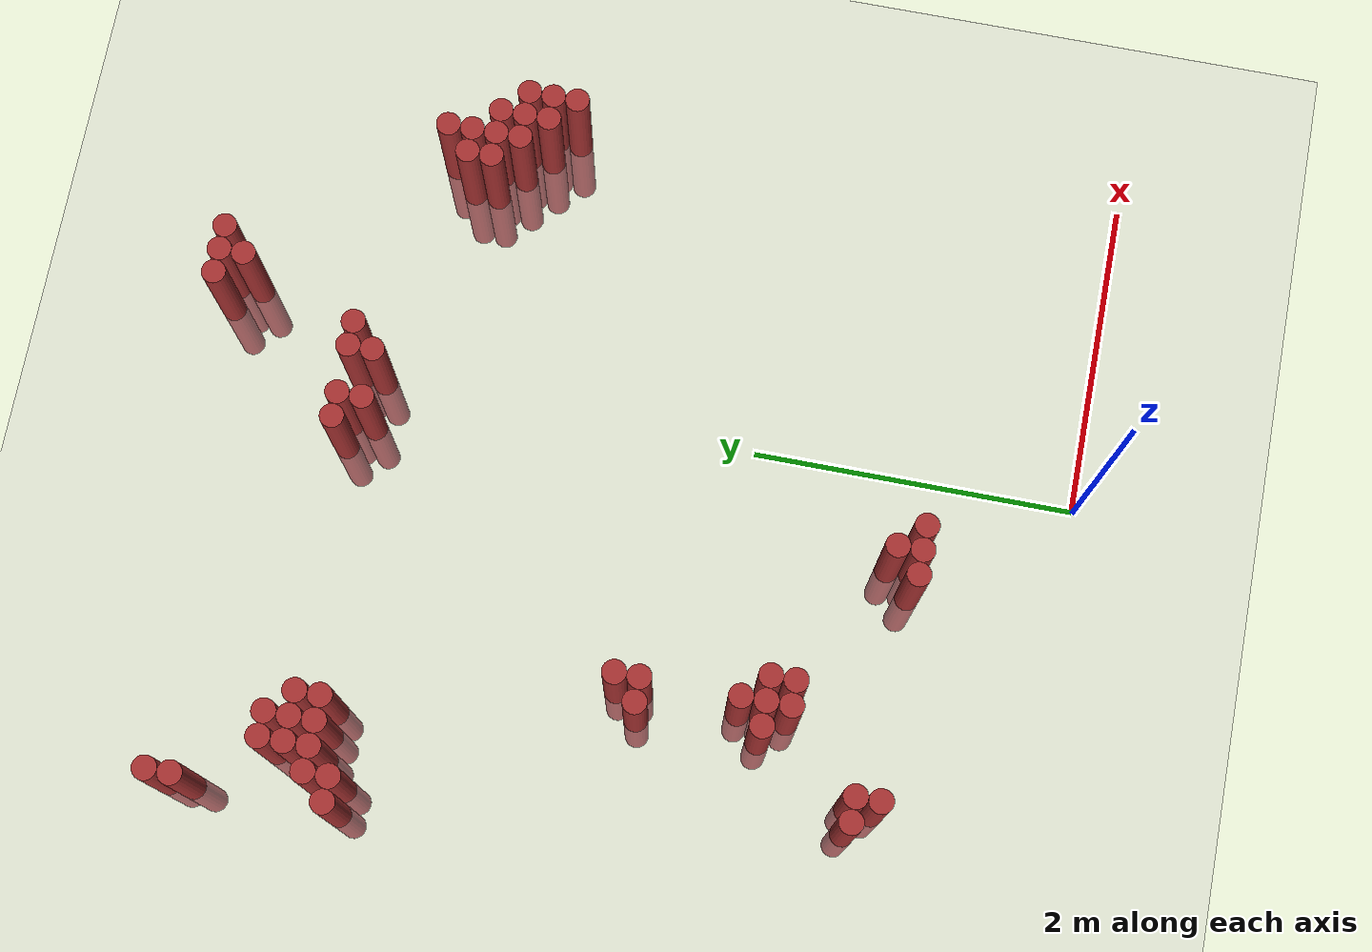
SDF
<sdf version="1.6">
 <world name="default">
  <model name="ground_plane">
   <static>1</static>
   <link name="link">
    <collision name="collision">
     <geometry><plane><normal>0 0 1</normal><size>100 100</size></plane></geometry>
     <surface><friction><ode><mu>100</mu><mu2>50</mu2></ode></friction></surface>
    </collision>
    <visual name="visual">
     <cast_shadows>0</cast_shadows>
     <geometry><plane><normal>0 0 1</normal><size>100 100</size></plane></geometry>
     <material>
      <script><uri>file://media/materials/scripts/gazebo.material</uri><name>Gazebo/Grey</name></script>
     </material>
    </visual>
   </link>
  </model>
  <model name="unit_cylinder_297">
   <static>1</static>
   <pose>-2.675000 4.075000 0.000000 0.000000 0.000000 0.000000</pose>
   <link name="link">
    <inertial>
     <mass>1</mass>
     <inertia><ixx>0.145833</ixx><ixy>0</ixy><ixz>0</ixz><iyy>0.145833</iyy><iyz>0</iyz><izz>0.125</izz></inertia>
    </inertial>
    <collision name="collision">
     <geometry><cylinder><radius>0.075000</radius><length>1.5</length></cylinder></geometry>
    </collision>
    <visual name="visual">
     <geometry><cylinder><radius>0.075000</radius><length>1.5</length></cylinder></geometry>
     <material>
      <ambient>0.648000 0.192000 0.192000 1</ambient>
      <diffuse>0.648000 0.192000 0.192000 1</diffuse>
     </material>
     <material>
      <script><name>Gazebo/Grey</name><uri>file://media/materials/scripts/gazebo.material</uri></script>
     </material>
    </visual>
   </link>
  </model>
  <model name="unit_cylinder_298">
   <static>1</static>
   <pose>-2.675000 4.975000 0.000000 0.000000 0.000000 0.000000</pose>
   <link name="link">
    <inertial>
     <mass>1</mass>
     <inertia><ixx>0.145833</ixx><ixy>0</ixy><ixz>0</ixz><iyy>0.145833</iyy><iyz>0</iyz><izz>0.125</izz></inertia>
    </inertial>
    <collision name="collision">
     <geometry><cylinder><radius>0.075000</radius><length>1.5</length></cylinder></geometry>
    </collision>
    <visual name="visual">
     <geometry><cylinder><radius>0.075000</radius><length>1.5</length></cylinder></geometry>
     <material>
      <ambient>0.648000 0.192000 0.192000 1</ambient>
      <diffuse>0.648000 0.192000 0.192000 1</diffuse>
     </material>
     <material>
      <script><name>Gazebo/Grey</name><uri>file://media/materials/scripts/gazebo.material</uri></script>
     </material>
    </visual>
   </link>
  </model>
  <model name="unit_cylinder_299">
   <static>1</static>
   <pose>-2.675000 5.125000 0.000000 0.000000 0.000000 0.000000</pose>
   <link name="link">
    <inertial>
     <mass>1</mass>
     <inertia><ixx>0.145833</ixx><ixy>0</ixy><ixz>0</ixz><iyy>0.145833</iyy><iyz>0</iyz><izz>0.125</izz></inertia>
    </inertial>
    <collision name="collision">
     <geometry><cylinder><radius>0.075000</radius><length>1.5</length></cylinder></geometry>
    </collision>
    <visual name="visual">
     <geometry><cylinder><radius>0.075000</radius><length>1.5</length></cylinder></geometry>
     <material>
      <ambient>0.648000 0.192000 0.192000 1</ambient>
      <diffuse>0.648000 0.192000 0.192000 1</diffuse>
     </material>
     <material>
      <script><name>Gazebo/Grey</name><uri>file://media/materials/scripts/gazebo.material</uri></script>
     </material>
    </visual>
   </link>
  </model>
  <model name="unit_cylinder_300">
   <static>1</static>
   <pose>-2.525000 4.075000 0.000000 0.000000 0.000000 0.000000</pose>
   <link name="link">
    <inertial>
     <mass>1</mass>
     <inertia><ixx>0.145833</ixx><ixy>0</ixy><ixz>0</ixz><iyy>0.145833</iyy><iyz>0</iyz><izz>0.125</izz></inertia>
    </inertial>
    <collision name="collision">
     <geometry><cylinder><radius>0.075000</radius><length>1.5</length></cylinder></geometry>
    </collision>
    <visual name="visual">
     <geometry><cylinder><radius>0.075000</radius><length>1.5</length></cylinder></geometry>
     <material>
      <ambient>0.648000 0.192000 0.192000 1</ambient>
      <diffuse>0.648000 0.192000 0.192000 1</diffuse>
     </material>
     <material>
      <script><name>Gazebo/Grey</name><uri>file://media/materials/scripts/gazebo.material</uri></script>
     </material>
    </visual>
   </link>
  </model>
  <model name="unit_cylinder_301">
   <static>1</static>
   <pose>-2.525000 4.225000 0.000000 0.000000 0.000000 0.000000</pose>
   <link name="link">
    <inertial>
     <mass>1</mass>
     <inertia><ixx>0.145833</ixx><ixy>0</ixy><ixz>0</ixz><iyy>0.145833</iyy><iyz>0</iyz><izz>0.125</izz></inertia>
    </inertial>
    <collision name="collision">
     <geometry><cylinder><radius>0.075000</radius><length>1.5</length></cylinder></geometry>
    </collision>
    <visual name="visual">
     <geometry><cylinder><radius>0.075000</radius><length>1.5</length></cylinder></geometry>
     <material>
      <ambient>0.648000 0.192000 0.192000 1</ambient>
      <diffuse>0.648000 0.192000 0.192000 1</diffuse>
     </material>
     <material>
      <script><name>Gazebo/Grey</name><uri>file://media/materials/scripts/gazebo.material</uri></script>
     </material>
    </visual>
   </link>
  </model>
  <model name="unit_cylinder_303">
   <static>1</static>
   <pose>-2.375000 4.225000 0.000000 0.000000 0.000000 0.000000</pose>
   <link name="link">
    <inertial>
     <mass>1</mass>
     <inertia><ixx>0.145833</ixx><ixy>0</ixy><ixz>0</ixz><iyy>0.145833</iyy><iyz>0</iyz><izz>0.125</izz></inertia>
    </inertial>
    <collision name="collision">
     <geometry><cylinder><radius>0.075000</radius><length>1.5</length></cylinder></geometry>
    </collision>
    <visual name="visual">
     <geometry><cylinder><radius>0.075000</radius><length>1.5</length></cylinder></geometry>
     <material>
      <ambient>0.648000 0.192000 0.192000 1</ambient>
      <diffuse>0.648000 0.192000 0.192000 1</diffuse>
     </material>
     <material>
      <script><name>Gazebo/Grey</name><uri>file://media/materials/scripts/gazebo.material</uri></script>
     </material>
    </visual>
   </link>
  </model>
  <model name="unit_cylinder_304">
   <static>1</static>
   <pose>-2.375000 4.375000 0.000000 0.000000 0.000000 0.000000</pose>
   <link name="link">
    <inertial>
     <mass>1</mass>
     <inertia><ixx>0.145833</ixx><ixy>0</ixy><ixz>0</ixz><iyy>0.145833</iyy><iyz>0</iyz><izz>0.125</izz></inertia>
    </inertial>
    <collision name="collision">
     <geometry><cylinder><radius>0.075000</radius><length>1.5</length></cylinder></geometry>
    </collision>
    <visual name="visual">
     <geometry><cylinder><radius>0.075000</radius><length>1.5</length></cylinder></geometry>
     <material>
      <ambient>0.648000 0.192000 0.192000 1</ambient>
      <diffuse>0.648000 0.192000 0.192000 1</diffuse>
     </material>
     <material>
      <script><name>Gazebo/Grey</name><uri>file://media/materials/scripts/gazebo.material</uri></script>
     </material>
    </visual>
   </link>
  </model>
  <model name="unit_cylinder_305">
   <static>1</static>
   <pose>-2.375000 4.525000 0.000000 0.000000 0.000000 0.000000</pose>
   <link name="link">
    <inertial>
     <mass>1</mass>
     <inertia><ixx>0.145833</ixx><ixy>0</ixy><ixz>0</ixz><iyy>0.145833</iyy><iyz>0</iyz><izz>0.125</izz></inertia>
    </inertial>
    <collision name="collision">
     <geometry><cylinder><radius>0.075000</radius><length>1.5</length></cylinder></geometry>
    </collision>
    <visual name="visual">
     <geometry><cylinder><radius>0.075000</radius><length>1.5</length></cylinder></geometry>
     <material>
      <ambient>0.648000 0.192000 0.192000 1</ambient>
      <diffuse>0.648000 0.192000 0.192000 1</diffuse>
     </material>
     <material>
      <script><name>Gazebo/Grey</name><uri>file://media/materials/scripts/gazebo.material</uri></script>
     </material>
    </visual>
   </link>
  </model>
  <model name="unit_cylinder_309">
   <static>1</static>
   <pose>-2.225000 1.075000 0.000000 0.000000 0.000000 0.000000</pose>
   <link name="link">
    <inertial>
     <mass>1</mass>
     <inertia><ixx>0.145833</ixx><ixy>0</ixy><ixz>0</ixz><iyy>0.145833</iyy><iyz>0</iyz><izz>0.125</izz></inertia>
    </inertial>
    <collision name="collision">
     <geometry><cylinder><radius>0.075000</radius><length>1.5</length></cylinder></geometry>
    </collision>
    <visual name="visual">
     <geometry><cylinder><radius>0.075000</radius><length>1.5</length></cylinder></geometry>
     <material>
      <ambient>0.648000 0.192000 0.192000 1</ambient>
      <diffuse>0.648000 0.192000 0.192000 1</diffuse>
     </material>
     <material>
      <script><name>Gazebo/Grey</name><uri>file://media/materials/scripts/gazebo.material</uri></script>
     </material>
    </visual>
   </link>
  </model>
  <model name="unit_cylinder_310">
   <static>1</static>
   <pose>-2.225000 4.225000 0.000000 0.000000 0.000000 0.000000</pose>
   <link name="link">
    <inertial>
     <mass>1</mass>
     <inertia><ixx>0.145833</ixx><ixy>0</ixy><ixz>0</ixz><iyy>0.145833</iyy><iyz>0</iyz><izz>0.125</izz></inertia>
    </inertial>
    <collision name="collision">
     <geometry><cylinder><radius>0.075000</radius><length>1.5</length></cylinder></geometry>
    </collision>
    <visual name="visual">
     <geometry><cylinder><radius>0.075000</radius><length>1.5</length></cylinder></geometry>
     <material>
      <ambient>0.648000 0.192000 0.192000 1</ambient>
      <diffuse>0.648000 0.192000 0.192000 1</diffuse>
     </material>
     <material>
      <script><name>Gazebo/Grey</name><uri>file://media/materials/scripts/gazebo.material</uri></script>
     </material>
    </visual>
   </link>
  </model>
  <model name="unit_cylinder_311">
   <static>1</static>
   <pose>-2.225000 4.375000 0.000000 0.000000 0.000000 0.000000</pose>
   <link name="link">
    <inertial>
     <mass>1</mass>
     <inertia><ixx>0.145833</ixx><ixy>0</ixy><ixz>0</ixz><iyy>0.145833</iyy><iyz>0</iyz><izz>0.125</izz></inertia>
    </inertial>
    <collision name="collision">
     <geometry><cylinder><radius>0.075000</radius><length>1.5</length></cylinder></geometry>
    </collision>
    <visual name="visual">
     <geometry><cylinder><radius>0.075000</radius><length>1.5</length></cylinder></geometry>
     <material>
      <ambient>0.648000 0.192000 0.192000 1</ambient>
      <diffuse>0.648000 0.192000 0.192000 1</diffuse>
     </material>
     <material>
      <script><name>Gazebo/Grey</name><uri>file://media/materials/scripts/gazebo.material</uri></script>
     </material>
    </visual>
   </link>
  </model>
  <model name="unit_cylinder_312">
   <static>1</static>
   <pose>-2.225000 4.525000 0.000000 0.000000 0.000000 0.000000</pose>
   <link name="link">
    <inertial>
     <mass>1</mass>
     <inertia><ixx>0.145833</ixx><ixy>0</ixy><ixz>0</ixz><iyy>0.145833</iyy><iyz>0</iyz><izz>0.125</izz></inertia>
    </inertial>
    <collision name="collision">
     <geometry><cylinder><radius>0.075000</radius><length>1.5</length></cylinder></geometry>
    </collision>
    <visual name="visual">
     <geometry><cylinder><radius>0.075000</radius><length>1.5</length></cylinder></geometry>
     <material>
      <ambient>0.648000 0.192000 0.192000 1</ambient>
      <diffuse>0.648000 0.192000 0.192000 1</diffuse>
     </material>
     <material>
      <script><name>Gazebo/Grey</name><uri>file://media/materials/scripts/gazebo.material</uri></script>
     </material>
    </visual>
   </link>
  </model>
  <model name="unit_cylinder_316">
   <static>1</static>
   <pose>-2.075000 0.925000 0.000000 0.000000 0.000000 0.000000</pose>
   <link name="link">
    <inertial>
     <mass>1</mass>
     <inertia><ixx>0.145833</ixx><ixy>0</ixy><ixz>0</ixz><iyy>0.145833</iyy><iyz>0</iyz><izz>0.125</izz></inertia>
    </inertial>
    <collision name="collision">
     <geometry><cylinder><radius>0.075000</radius><length>1.5</length></cylinder></geometry>
    </collision>
    <visual name="visual">
     <geometry><cylinder><radius>0.075000</radius><length>1.5</length></cylinder></geometry>
     <material>
      <ambient>0.648000 0.192000 0.192000 1</ambient>
      <diffuse>0.648000 0.192000 0.192000 1</diffuse>
     </material>
     <material>
      <script><name>Gazebo/Grey</name><uri>file://media/materials/scripts/gazebo.material</uri></script>
     </material>
    </visual>
   </link>
  </model>
  <model name="unit_cylinder_317">
   <static>1</static>
   <pose>-2.075000 1.075000 0.000000 0.000000 0.000000 0.000000</pose>
   <link name="link">
    <inertial>
     <mass>1</mass>
     <inertia><ixx>0.145833</ixx><ixy>0</ixy><ixz>0</ixz><iyy>0.145833</iyy><iyz>0</iyz><izz>0.125</izz></inertia>
    </inertial>
    <collision name="collision">
     <geometry><cylinder><radius>0.075000</radius><length>1.5</length></cylinder></geometry>
    </collision>
    <visual name="visual">
     <geometry><cylinder><radius>0.075000</radius><length>1.5</length></cylinder></geometry>
     <material>
      <ambient>0.648000 0.192000 0.192000 1</ambient>
      <diffuse>0.648000 0.192000 0.192000 1</diffuse>
     </material>
     <material>
      <script><name>Gazebo/Grey</name><uri>file://media/materials/scripts/gazebo.material</uri></script>
     </material>
    </visual>
   </link>
  </model>
  <model name="unit_cylinder_318">
   <static>1</static>
   <pose>-2.075000 4.225000 0.000000 0.000000 0.000000 0.000000</pose>
   <link name="link">
    <inertial>
     <mass>1</mass>
     <inertia><ixx>0.145833</ixx><ixy>0</ixy><ixz>0</ixz><iyy>0.145833</iyy><iyz>0</iyz><izz>0.125</izz></inertia>
    </inertial>
    <collision name="collision">
     <geometry><cylinder><radius>0.075000</radius><length>1.5</length></cylinder></geometry>
    </collision>
    <visual name="visual">
     <geometry><cylinder><radius>0.075000</radius><length>1.5</length></cylinder></geometry>
     <material>
      <ambient>0.648000 0.192000 0.192000 1</ambient>
      <diffuse>0.648000 0.192000 0.192000 1</diffuse>
     </material>
     <material>
      <script><name>Gazebo/Grey</name><uri>file://media/materials/scripts/gazebo.material</uri></script>
     </material>
    </visual>
   </link>
  </model>
  <model name="unit_cylinder_319">
   <static>1</static>
   <pose>-2.075000 4.375000 0.000000 0.000000 0.000000 0.000000</pose>
   <link name="link">
    <inertial>
     <mass>1</mass>
     <inertia><ixx>0.145833</ixx><ixy>0</ixy><ixz>0</ixz><iyy>0.145833</iyy><iyz>0</iyz><izz>0.125</izz></inertia>
    </inertial>
    <collision name="collision">
     <geometry><cylinder><radius>0.075000</radius><length>1.5</length></cylinder></geometry>
    </collision>
    <visual name="visual">
     <geometry><cylinder><radius>0.075000</radius><length>1.5</length></cylinder></geometry>
     <material>
      <ambient>0.648000 0.192000 0.192000 1</ambient>
      <diffuse>0.648000 0.192000 0.192000 1</diffuse>
     </material>
     <material>
      <script><name>Gazebo/Grey</name><uri>file://media/materials/scripts/gazebo.material</uri></script>
     </material>
    </visual>
   </link>
  </model>
  <model name="unit_cylinder_326">
   <static>1</static>
   <pose>-1.775000 1.675000 0.000000 0.000000 0.000000 0.000000</pose>
   <link name="link">
    <inertial>
     <mass>1</mass>
     <inertia><ixx>0.145833</ixx><ixy>0</ixy><ixz>0</ixz><iyy>0.145833</iyy><iyz>0</iyz><izz>0.125</izz></inertia>
    </inertial>
    <collision name="collision">
     <geometry><cylinder><radius>0.075000</radius><length>1.5</length></cylinder></geometry>
    </collision>
    <visual name="visual">
     <geometry><cylinder><radius>0.075000</radius><length>1.5</length></cylinder></geometry>
     <material>
      <ambient>0.648000 0.192000 0.192000 1</ambient>
      <diffuse>0.648000 0.192000 0.192000 1</diffuse>
     </material>
     <material>
      <script><name>Gazebo/Grey</name><uri>file://media/materials/scripts/gazebo.material</uri></script>
     </material>
    </visual>
   </link>
  </model>
  <model name="unit_cylinder_327">
   <static>1</static>
   <pose>-1.775000 2.425000 0.000000 0.000000 0.000000 0.000000</pose>
   <link name="link">
    <inertial>
     <mass>1</mass>
     <inertia><ixx>0.145833</ixx><ixy>0</ixy><ixz>0</ixz><iyy>0.145833</iyy><iyz>0</iyz><izz>0.125</izz></inertia>
    </inertial>
    <collision name="collision">
     <geometry><cylinder><radius>0.075000</radius><length>1.5</length></cylinder></geometry>
    </collision>
    <visual name="visual">
     <geometry><cylinder><radius>0.075000</radius><length>1.5</length></cylinder></geometry>
     <material>
      <ambient>0.648000 0.192000 0.192000 1</ambient>
      <diffuse>0.648000 0.192000 0.192000 1</diffuse>
     </material>
     <material>
      <script><name>Gazebo/Grey</name><uri>file://media/materials/scripts/gazebo.material</uri></script>
     </material>
    </visual>
   </link>
  </model>
  <model name="unit_cylinder_331">
   <static>1</static>
   <pose>-1.625000 1.525000 0.000000 0.000000 0.000000 0.000000</pose>
   <link name="link">
    <inertial>
     <mass>1</mass>
     <inertia><ixx>0.145833</ixx><ixy>0</ixy><ixz>0</ixz><iyy>0.145833</iyy><iyz>0</iyz><izz>0.125</izz></inertia>
    </inertial>
    <collision name="collision">
     <geometry><cylinder><radius>0.075000</radius><length>1.5</length></cylinder></geometry>
    </collision>
    <visual name="visual">
     <geometry><cylinder><radius>0.075000</radius><length>1.5</length></cylinder></geometry>
     <material>
      <ambient>0.648000 0.192000 0.192000 1</ambient>
      <diffuse>0.648000 0.192000 0.192000 1</diffuse>
     </material>
     <material>
      <script><name>Gazebo/Grey</name><uri>file://media/materials/scripts/gazebo.material</uri></script>
     </material>
    </visual>
   </link>
  </model>
  <model name="unit_cylinder_332">
   <static>1</static>
   <pose>-1.625000 1.675000 0.000000 0.000000 0.000000 0.000000</pose>
   <link name="link">
    <inertial>
     <mass>1</mass>
     <inertia><ixx>0.145833</ixx><ixy>0</ixy><ixz>0</ixz><iyy>0.145833</iyy><iyz>0</iyz><izz>0.125</izz></inertia>
    </inertial>
    <collision name="collision">
     <geometry><cylinder><radius>0.075000</radius><length>1.5</length></cylinder></geometry>
    </collision>
    <visual name="visual">
     <geometry><cylinder><radius>0.075000</radius><length>1.5</length></cylinder></geometry>
     <material>
      <ambient>0.648000 0.192000 0.192000 1</ambient>
      <diffuse>0.648000 0.192000 0.192000 1</diffuse>
     </material>
     <material>
      <script><name>Gazebo/Grey</name><uri>file://media/materials/scripts/gazebo.material</uri></script>
     </material>
    </visual>
   </link>
  </model>
  <model name="unit_cylinder_333">
   <static>1</static>
   <pose>-1.625000 1.825000 0.000000 0.000000 0.000000 0.000000</pose>
   <link name="link">
    <inertial>
     <mass>1</mass>
     <inertia><ixx>0.145833</ixx><ixy>0</ixy><ixz>0</ixz><iyy>0.145833</iyy><iyz>0</iyz><izz>0.125</izz></inertia>
    </inertial>
    <collision name="collision">
     <geometry><cylinder><radius>0.075000</radius><length>1.5</length></cylinder></geometry>
    </collision>
    <visual name="visual">
     <geometry><cylinder><radius>0.075000</radius><length>1.5</length></cylinder></geometry>
     <material>
      <ambient>0.648000 0.192000 0.192000 1</ambient>
      <diffuse>0.648000 0.192000 0.192000 1</diffuse>
     </material>
     <material>
      <script><name>Gazebo/Grey</name><uri>file://media/materials/scripts/gazebo.material</uri></script>
     </material>
    </visual>
   </link>
  </model>
  <model name="unit_cylinder_334">
   <static>1</static>
   <pose>-1.625000 2.425000 0.000000 0.000000 0.000000 0.000000</pose>
   <link name="link">
    <inertial>
     <mass>1</mass>
     <inertia><ixx>0.145833</ixx><ixy>0</ixy><ixz>0</ixz><iyy>0.145833</iyy><iyz>0</iyz><izz>0.125</izz></inertia>
    </inertial>
    <collision name="collision">
     <geometry><cylinder><radius>0.075000</radius><length>1.5</length></cylinder></geometry>
    </collision>
    <visual name="visual">
     <geometry><cylinder><radius>0.075000</radius><length>1.5</length></cylinder></geometry>
     <material>
      <ambient>0.648000 0.192000 0.192000 1</ambient>
      <diffuse>0.648000 0.192000 0.192000 1</diffuse>
     </material>
     <material>
      <script><name>Gazebo/Grey</name><uri>file://media/materials/scripts/gazebo.material</uri></script>
     </material>
    </visual>
   </link>
  </model>
  <model name="unit_cylinder_335">
   <static>1</static>
   <pose>-1.625000 2.575000 0.000000 0.000000 0.000000 0.000000</pose>
   <link name="link">
    <inertial>
     <mass>1</mass>
     <inertia><ixx>0.145833</ixx><ixy>0</ixy><ixz>0</ixz><iyy>0.145833</iyy><iyz>0</iyz><izz>0.125</izz></inertia>
    </inertial>
    <collision name="collision">
     <geometry><cylinder><radius>0.075000</radius><length>1.5</length></cylinder></geometry>
    </collision>
    <visual name="visual">
     <geometry><cylinder><radius>0.075000</radius><length>1.5</length></cylinder></geometry>
     <material>
      <ambient>0.648000 0.192000 0.192000 1</ambient>
      <diffuse>0.648000 0.192000 0.192000 1</diffuse>
     </material>
     <material>
      <script><name>Gazebo/Grey</name><uri>file://media/materials/scripts/gazebo.material</uri></script>
     </material>
    </visual>
   </link>
  </model>
  <model name="unit_cylinder_337">
   <static>1</static>
   <pose>-1.475000 1.525000 0.000000 0.000000 0.000000 0.000000</pose>
   <link name="link">
    <inertial>
     <mass>1</mass>
     <inertia><ixx>0.145833</ixx><ixy>0</ixy><ixz>0</ixz><iyy>0.145833</iyy><iyz>0</iyz><izz>0.125</izz></inertia>
    </inertial>
    <collision name="collision">
     <geometry><cylinder><radius>0.075000</radius><length>1.5</length></cylinder></geometry>
    </collision>
    <visual name="visual">
     <geometry><cylinder><radius>0.075000</radius><length>1.5</length></cylinder></geometry>
     <material>
      <ambient>0.648000 0.192000 0.192000 1</ambient>
      <diffuse>0.648000 0.192000 0.192000 1</diffuse>
     </material>
     <material>
      <script><name>Gazebo/Grey</name><uri>file://media/materials/scripts/gazebo.material</uri></script>
     </material>
    </visual>
   </link>
  </model>
  <model name="unit_cylinder_338">
   <static>1</static>
   <pose>-1.475000 1.675000 0.000000 0.000000 0.000000 0.000000</pose>
   <link name="link">
    <inertial>
     <mass>1</mass>
     <inertia><ixx>0.145833</ixx><ixy>0</ixy><ixz>0</ixz><iyy>0.145833</iyy><iyz>0</iyz><izz>0.125</izz></inertia>
    </inertial>
    <collision name="collision">
     <geometry><cylinder><radius>0.075000</radius><length>1.5</length></cylinder></geometry>
    </collision>
    <visual name="visual">
     <geometry><cylinder><radius>0.075000</radius><length>1.5</length></cylinder></geometry>
     <material>
      <ambient>0.648000 0.192000 0.192000 1</ambient>
      <diffuse>0.648000 0.192000 0.192000 1</diffuse>
     </material>
     <material>
      <script><name>Gazebo/Grey</name><uri>file://media/materials/scripts/gazebo.material</uri></script>
     </material>
    </visual>
   </link>
  </model>
  <model name="unit_cylinder_344">
   <static>1</static>
   <pose>-0.725000 0.925000 0.000000 0.000000 0.000000 0.000000</pose>
   <link name="link">
    <inertial>
     <mass>1</mass>
     <inertia><ixx>0.145833</ixx><ixy>0</ixy><ixz>0</ixz><iyy>0.145833</iyy><iyz>0</iyz><izz>0.125</izz></inertia>
    </inertial>
    <collision name="collision">
     <geometry><cylinder><radius>0.075000</radius><length>1.5</length></cylinder></geometry>
    </collision>
    <visual name="visual">
     <geometry><cylinder><radius>0.075000</radius><length>1.5</length></cylinder></geometry>
     <material>
      <ambient>0.648000 0.192000 0.192000 1</ambient>
      <diffuse>0.648000 0.192000 0.192000 1</diffuse>
     </material>
     <material>
      <script><name>Gazebo/Grey</name><uri>file://media/materials/scripts/gazebo.material</uri></script>
     </material>
    </visual>
   </link>
  </model>
  <model name="unit_cylinder_348">
   <static>1</static>
   <pose>-0.575000 0.925000 0.000000 0.000000 0.000000 0.000000</pose>
   <link name="link">
    <inertial>
     <mass>1</mass>
     <inertia><ixx>0.145833</ixx><ixy>0</ixy><ixz>0</ixz><iyy>0.145833</iyy><iyz>0</iyz><izz>0.125</izz></inertia>
    </inertial>
    <collision name="collision">
     <geometry><cylinder><radius>0.075000</radius><length>1.5</length></cylinder></geometry>
    </collision>
    <visual name="visual">
     <geometry><cylinder><radius>0.075000</radius><length>1.5</length></cylinder></geometry>
     <material>
      <ambient>0.648000 0.192000 0.192000 1</ambient>
      <diffuse>0.648000 0.192000 0.192000 1</diffuse>
     </material>
     <material>
      <script><name>Gazebo/Grey</name><uri>file://media/materials/scripts/gazebo.material</uri></script>
     </material>
    </visual>
   </link>
  </model>
  <model name="unit_cylinder_349">
   <static>1</static>
   <pose>-0.575000 1.075000 0.000000 0.000000 0.000000 0.000000</pose>
   <link name="link">
    <inertial>
     <mass>1</mass>
     <inertia><ixx>0.145833</ixx><ixy>0</ixy><ixz>0</ixz><iyy>0.145833</iyy><iyz>0</iyz><izz>0.125</izz></inertia>
    </inertial>
    <collision name="collision">
     <geometry><cylinder><radius>0.075000</radius><length>1.5</length></cylinder></geometry>
    </collision>
    <visual name="visual">
     <geometry><cylinder><radius>0.075000</radius><length>1.5</length></cylinder></geometry>
     <material>
      <ambient>0.648000 0.192000 0.192000 1</ambient>
      <diffuse>0.648000 0.192000 0.192000 1</diffuse>
     </material>
     <material>
      <script><name>Gazebo/Grey</name><uri>file://media/materials/scripts/gazebo.material</uri></script>
     </material>
    </visual>
   </link>
  </model>
  <model name="unit_cylinder_354">
   <static>1</static>
   <pose>-0.425000 0.925000 0.000000 0.000000 0.000000 0.000000</pose>
   <link name="link">
    <inertial>
     <mass>1</mass>
     <inertia><ixx>0.145833</ixx><ixy>0</ixy><ixz>0</ixz><iyy>0.145833</iyy><iyz>0</iyz><izz>0.125</izz></inertia>
    </inertial>
    <collision name="collision">
     <geometry><cylinder><radius>0.075000</radius><length>1.5</length></cylinder></geometry>
    </collision>
    <visual name="visual">
     <geometry><cylinder><radius>0.075000</radius><length>1.5</length></cylinder></geometry>
     <material>
      <ambient>0.648000 0.192000 0.192000 1</ambient>
      <diffuse>0.648000 0.192000 0.192000 1</diffuse>
     </material>
     <material>
      <script><name>Gazebo/Grey</name><uri>file://media/materials/scripts/gazebo.material</uri></script>
     </material>
    </visual>
   </link>
  </model>
  <model name="unit_cylinder_355">
   <static>1</static>
   <pose>-0.425000 4.525000 0.000000 0.000000 0.000000 0.000000</pose>
   <link name="link">
    <inertial>
     <mass>1</mass>
     <inertia><ixx>0.145833</ixx><ixy>0</ixy><ixz>0</ixz><iyy>0.145833</iyy><iyz>0</iyz><izz>0.125</izz></inertia>
    </inertial>
    <collision name="collision">
     <geometry><cylinder><radius>0.075000</radius><length>1.5</length></cylinder></geometry>
    </collision>
    <visual name="visual">
     <geometry><cylinder><radius>0.075000</radius><length>1.5</length></cylinder></geometry>
     <material>
      <ambient>0.648000 0.192000 0.192000 1</ambient>
      <diffuse>0.648000 0.192000 0.192000 1</diffuse>
     </material>
     <material>
      <script><name>Gazebo/Grey</name><uri>file://media/materials/scripts/gazebo.material</uri></script>
     </material>
    </visual>
   </link>
  </model>
  <model name="unit_cylinder_360">
   <static>1</static>
   <pose>-0.275000 4.375000 0.000000 0.000000 0.000000 0.000000</pose>
   <link name="link">
    <inertial>
     <mass>1</mass>
     <inertia><ixx>0.145833</ixx><ixy>0</ixy><ixz>0</ixz><iyy>0.145833</iyy><iyz>0</iyz><izz>0.125</izz></inertia>
    </inertial>
    <collision name="collision">
     <geometry><cylinder><radius>0.075000</radius><length>1.5</length></cylinder></geometry>
    </collision>
    <visual name="visual">
     <geometry><cylinder><radius>0.075000</radius><length>1.5</length></cylinder></geometry>
     <material>
      <ambient>0.648000 0.192000 0.192000 1</ambient>
      <diffuse>0.648000 0.192000 0.192000 1</diffuse>
     </material>
     <material>
      <script><name>Gazebo/Grey</name><uri>file://media/materials/scripts/gazebo.material</uri></script>
     </material>
    </visual>
   </link>
  </model>
  <model name="unit_cylinder_361">
   <static>1</static>
   <pose>-0.275000 4.525000 0.000000 0.000000 0.000000 0.000000</pose>
   <link name="link">
    <inertial>
     <mass>1</mass>
     <inertia><ixx>0.145833</ixx><ixy>0</ixy><ixz>0</ixz><iyy>0.145833</iyy><iyz>0</iyz><izz>0.125</izz></inertia>
    </inertial>
    <collision name="collision">
     <geometry><cylinder><radius>0.075000</radius><length>1.5</length></cylinder></geometry>
    </collision>
    <visual name="visual">
     <geometry><cylinder><radius>0.075000</radius><length>1.5</length></cylinder></geometry>
     <material>
      <ambient>0.648000 0.192000 0.192000 1</ambient>
      <diffuse>0.648000 0.192000 0.192000 1</diffuse>
     </material>
     <material>
      <script><name>Gazebo/Grey</name><uri>file://media/materials/scripts/gazebo.material</uri></script>
     </material>
    </visual>
   </link>
  </model>
  <model name="unit_cylinder_366">
   <static>1</static>
   <pose>0.025000 4.375000 0.000000 0.000000 0.000000 0.000000</pose>
   <link name="link">
    <inertial>
     <mass>1</mass>
     <inertia><ixx>0.145833</ixx><ixy>0</ixy><ixz>0</ixz><iyy>0.145833</iyy><iyz>0</iyz><izz>0.125</izz></inertia>
    </inertial>
    <collision name="collision">
     <geometry><cylinder><radius>0.075000</radius><length>1.5</length></cylinder></geometry>
    </collision>
    <visual name="visual">
     <geometry><cylinder><radius>0.075000</radius><length>1.5</length></cylinder></geometry>
     <material>
      <ambient>0.648000 0.192000 0.192000 1</ambient>
      <diffuse>0.648000 0.192000 0.192000 1</diffuse>
     </material>
     <material>
      <script><name>Gazebo/Grey</name><uri>file://media/materials/scripts/gazebo.material</uri></script>
     </material>
    </visual>
   </link>
  </model>
  <model name="unit_cylinder_367">
   <static>1</static>
   <pose>0.025000 4.525000 0.000000 0.000000 0.000000 0.000000</pose>
   <link name="link">
    <inertial>
     <mass>1</mass>
     <inertia><ixx>0.145833</ixx><ixy>0</ixy><ixz>0</ixz><iyy>0.145833</iyy><iyz>0</iyz><izz>0.125</izz></inertia>
    </inertial>
    <collision name="collision">
     <geometry><cylinder><radius>0.075000</radius><length>1.5</length></cylinder></geometry>
    </collision>
    <visual name="visual">
     <geometry><cylinder><radius>0.075000</radius><length>1.5</length></cylinder></geometry>
     <material>
      <ambient>0.648000 0.192000 0.192000 1</ambient>
      <diffuse>0.648000 0.192000 0.192000 1</diffuse>
     </material>
     <material>
      <script><name>Gazebo/Grey</name><uri>file://media/materials/scripts/gazebo.material</uri></script>
     </material>
    </visual>
   </link>
  </model>
  <model name="unit_cylinder_370">
   <static>1</static>
   <pose>0.175000 4.525000 0.000000 0.000000 0.000000 0.000000</pose>
   <link name="link">
    <inertial>
     <mass>1</mass>
     <inertia><ixx>0.145833</ixx><ixy>0</ixy><ixz>0</ixz><iyy>0.145833</iyy><iyz>0</iyz><izz>0.125</izz></inertia>
    </inertial>
    <collision name="collision">
     <geometry><cylinder><radius>0.075000</radius><length>1.5</length></cylinder></geometry>
    </collision>
    <visual name="visual">
     <geometry><cylinder><radius>0.075000</radius><length>1.5</length></cylinder></geometry>
     <material>
      <ambient>0.648000 0.192000 0.192000 1</ambient>
      <diffuse>0.648000 0.192000 0.192000 1</diffuse>
     </material>
     <material>
      <script><name>Gazebo/Grey</name><uri>file://media/materials/scripts/gazebo.material</uri></script>
     </material>
    </visual>
   </link>
  </model>
  <model name="unit_cylinder_373">
   <static>1</static>
   <pose>0.325000 5.425000 0.000000 0.000000 0.000000 0.000000</pose>
   <link name="link">
    <inertial>
     <mass>1</mass>
     <inertia><ixx>0.145833</ixx><ixy>0</ixy><ixz>0</ixz><iyy>0.145833</iyy><iyz>0</iyz><izz>0.125</izz></inertia>
    </inertial>
    <collision name="collision">
     <geometry><cylinder><radius>0.075000</radius><length>1.5</length></cylinder></geometry>
    </collision>
    <visual name="visual">
     <geometry><cylinder><radius>0.075000</radius><length>1.5</length></cylinder></geometry>
     <material>
      <ambient>0.648000 0.192000 0.192000 1</ambient>
      <diffuse>0.648000 0.192000 0.192000 1</diffuse>
     </material>
     <material>
      <script><name>Gazebo/Grey</name><uri>file://media/materials/scripts/gazebo.material</uri></script>
     </material>
    </visual>
   </link>
  </model>
  <model name="unit_cylinder_375">
   <static>1</static>
   <pose>0.475000 5.275000 0.000000 0.000000 0.000000 0.000000</pose>
   <link name="link">
    <inertial>
     <mass>1</mass>
     <inertia><ixx>0.145833</ixx><ixy>0</ixy><ixz>0</ixz><iyy>0.145833</iyy><iyz>0</iyz><izz>0.125</izz></inertia>
    </inertial>
    <collision name="collision">
     <geometry><cylinder><radius>0.075000</radius><length>1.5</length></cylinder></geometry>
    </collision>
    <visual name="visual">
     <geometry><cylinder><radius>0.075000</radius><length>1.5</length></cylinder></geometry>
     <material>
      <ambient>0.648000 0.192000 0.192000 1</ambient>
      <diffuse>0.648000 0.192000 0.192000 1</diffuse>
     </material>
     <material>
      <script><name>Gazebo/Grey</name><uri>file://media/materials/scripts/gazebo.material</uri></script>
     </material>
    </visual>
   </link>
  </model>
  <model name="unit_cylinder_376">
   <static>1</static>
   <pose>0.475000 5.425000 0.000000 0.000000 0.000000 0.000000</pose>
   <link name="link">
    <inertial>
     <mass>1</mass>
     <inertia><ixx>0.145833</ixx><ixy>0</ixy><ixz>0</ixz><iyy>0.145833</iyy><iyz>0</iyz><izz>0.125</izz></inertia>
    </inertial>
    <collision name="collision">
     <geometry><cylinder><radius>0.075000</radius><length>1.5</length></cylinder></geometry>
    </collision>
    <visual name="visual">
     <geometry><cylinder><radius>0.075000</radius><length>1.5</length></cylinder></geometry>
     <material>
      <ambient>0.648000 0.192000 0.192000 1</ambient>
      <diffuse>0.648000 0.192000 0.192000 1</diffuse>
     </material>
     <material>
      <script><name>Gazebo/Grey</name><uri>file://media/materials/scripts/gazebo.material</uri></script>
     </material>
    </visual>
   </link>
  </model>
  <model name="unit_cylinder_377">
   <static>1</static>
   <pose>0.625000 5.425000 0.000000 0.000000 0.000000 0.000000</pose>
   <link name="link">
    <inertial>
     <mass>1</mass>
     <inertia><ixx>0.145833</ixx><ixy>0</ixy><ixz>0</ixz><iyy>0.145833</iyy><iyz>0</iyz><izz>0.125</izz></inertia>
    </inertial>
    <collision name="collision">
     <geometry><cylinder><radius>0.075000</radius><length>1.5</length></cylinder></geometry>
    </collision>
    <visual name="visual">
     <geometry><cylinder><radius>0.075000</radius><length>1.5</length></cylinder></geometry>
     <material>
      <ambient>0.648000 0.192000 0.192000 1</ambient>
      <diffuse>0.648000 0.192000 0.192000 1</diffuse>
     </material>
     <material>
      <script><name>Gazebo/Grey</name><uri>file://media/materials/scripts/gazebo.material</uri></script>
     </material>
    </visual>
   </link>
  </model>
  <model name="unit_cylinder_382">
   <static>1</static>
   <pose>1.375000 3.925000 0.000000 0.000000 0.000000 0.000000</pose>
   <link name="link">
    <inertial>
     <mass>1</mass>
     <inertia><ixx>0.145833</ixx><ixy>0</ixy><ixz>0</ixz><iyy>0.145833</iyy><iyz>0</iyz><izz>0.125</izz></inertia>
    </inertial>
    <collision name="collision">
     <geometry><cylinder><radius>0.075000</radius><length>1.5</length></cylinder></geometry>
    </collision>
    <visual name="visual">
     <geometry><cylinder><radius>0.075000</radius><length>1.5</length></cylinder></geometry>
     <material>
      <ambient>0.648000 0.192000 0.192000 1</ambient>
      <diffuse>0.648000 0.192000 0.192000 1</diffuse>
     </material>
     <material>
      <script><name>Gazebo/Grey</name><uri>file://media/materials/scripts/gazebo.material</uri></script>
     </material>
    </visual>
   </link>
  </model>
  <model name="unit_cylinder_383">
   <static>1</static>
   <pose>1.375000 4.075000 0.000000 0.000000 0.000000 0.000000</pose>
   <link name="link">
    <inertial>
     <mass>1</mass>
     <inertia><ixx>0.145833</ixx><ixy>0</ixy><ixz>0</ixz><iyy>0.145833</iyy><iyz>0</iyz><izz>0.125</izz></inertia>
    </inertial>
    <collision name="collision">
     <geometry><cylinder><radius>0.075000</radius><length>1.5</length></cylinder></geometry>
    </collision>
    <visual name="visual">
     <geometry><cylinder><radius>0.075000</radius><length>1.5</length></cylinder></geometry>
     <material>
      <ambient>0.648000 0.192000 0.192000 1</ambient>
      <diffuse>0.648000 0.192000 0.192000 1</diffuse>
     </material>
     <material>
      <script><name>Gazebo/Grey</name><uri>file://media/materials/scripts/gazebo.material</uri></script>
     </material>
    </visual>
   </link>
  </model>
  <model name="unit_cylinder_387">
   <static>1</static>
   <pose>1.525000 3.775000 0.000000 0.000000 0.000000 0.000000</pose>
   <link name="link">
    <inertial>
     <mass>1</mass>
     <inertia><ixx>0.145833</ixx><ixy>0</ixy><ixz>0</ixz><iyy>0.145833</iyy><iyz>0</iyz><izz>0.125</izz></inertia>
    </inertial>
    <collision name="collision">
     <geometry><cylinder><radius>0.075000</radius><length>1.5</length></cylinder></geometry>
    </collision>
    <visual name="visual">
     <geometry><cylinder><radius>0.075000</radius><length>1.5</length></cylinder></geometry>
     <material>
      <ambient>0.648000 0.192000 0.192000 1</ambient>
      <diffuse>0.648000 0.192000 0.192000 1</diffuse>
     </material>
     <material>
      <script><name>Gazebo/Grey</name><uri>file://media/materials/scripts/gazebo.material</uri></script>
     </material>
    </visual>
   </link>
  </model>
  <model name="unit_cylinder_388">
   <static>1</static>
   <pose>1.525000 3.925000 0.000000 0.000000 0.000000 0.000000</pose>
   <link name="link">
    <inertial>
     <mass>1</mass>
     <inertia><ixx>0.145833</ixx><ixy>0</ixy><ixz>0</ixz><iyy>0.145833</iyy><iyz>0</iyz><izz>0.125</izz></inertia>
    </inertial>
    <collision name="collision">
     <geometry><cylinder><radius>0.075000</radius><length>1.5</length></cylinder></geometry>
    </collision>
    <visual name="visual">
     <geometry><cylinder><radius>0.075000</radius><length>1.5</length></cylinder></geometry>
     <material>
      <ambient>0.648000 0.192000 0.192000 1</ambient>
      <diffuse>0.648000 0.192000 0.192000 1</diffuse>
     </material>
     <material>
      <script><name>Gazebo/Grey</name><uri>file://media/materials/scripts/gazebo.material</uri></script>
     </material>
    </visual>
   </link>
  </model>
  <model name="unit_cylinder_389">
   <static>1</static>
   <pose>1.525000 4.075000 0.000000 0.000000 0.000000 0.000000</pose>
   <link name="link">
    <inertial>
     <mass>1</mass>
     <inertia><ixx>0.145833</ixx><ixy>0</ixy><ixz>0</ixz><iyy>0.145833</iyy><iyz>0</iyz><izz>0.125</izz></inertia>
    </inertial>
    <collision name="collision">
     <geometry><cylinder><radius>0.075000</radius><length>1.5</length></cylinder></geometry>
    </collision>
    <visual name="visual">
     <geometry><cylinder><radius>0.075000</radius><length>1.5</length></cylinder></geometry>
     <material>
      <ambient>0.648000 0.192000 0.192000 1</ambient>
      <diffuse>0.648000 0.192000 0.192000 1</diffuse>
     </material>
     <material>
      <script><name>Gazebo/Grey</name><uri>file://media/materials/scripts/gazebo.material</uri></script>
     </material>
    </visual>
   </link>
  </model>
  <model name="unit_cylinder_390">
   <static>1</static>
   <pose>1.525000 4.225000 0.000000 0.000000 0.000000 0.000000</pose>
   <link name="link">
    <inertial>
     <mass>1</mass>
     <inertia><ixx>0.145833</ixx><ixy>0</ixy><ixz>0</ixz><iyy>0.145833</iyy><iyz>0</iyz><izz>0.125</izz></inertia>
    </inertial>
    <collision name="collision">
     <geometry><cylinder><radius>0.075000</radius><length>1.5</length></cylinder></geometry>
    </collision>
    <visual name="visual">
     <geometry><cylinder><radius>0.075000</radius><length>1.5</length></cylinder></geometry>
     <material>
      <ambient>0.648000 0.192000 0.192000 1</ambient>
      <diffuse>0.648000 0.192000 0.192000 1</diffuse>
     </material>
     <material>
      <script><name>Gazebo/Grey</name><uri>file://media/materials/scripts/gazebo.material</uri></script>
     </material>
    </visual>
   </link>
  </model>
  <model name="unit_cylinder_394">
   <static>1</static>
   <pose>1.675000 3.625000 0.000000 0.000000 0.000000 0.000000</pose>
   <link name="link">
    <inertial>
     <mass>1</mass>
     <inertia><ixx>0.145833</ixx><ixy>0</ixy><ixz>0</ixz><iyy>0.145833</iyy><iyz>0</iyz><izz>0.125</izz></inertia>
    </inertial>
    <collision name="collision">
     <geometry><cylinder><radius>0.075000</radius><length>1.5</length></cylinder></geometry>
    </collision>
    <visual name="visual">
     <geometry><cylinder><radius>0.075000</radius><length>1.5</length></cylinder></geometry>
     <material>
      <ambient>0.648000 0.192000 0.192000 1</ambient>
      <diffuse>0.648000 0.192000 0.192000 1</diffuse>
     </material>
     <material>
      <script><name>Gazebo/Grey</name><uri>file://media/materials/scripts/gazebo.material</uri></script>
     </material>
    </visual>
   </link>
  </model>
  <model name="unit_cylinder_395">
   <static>1</static>
   <pose>1.675000 3.775000 0.000000 0.000000 0.000000 0.000000</pose>
   <link name="link">
    <inertial>
     <mass>1</mass>
     <inertia><ixx>0.145833</ixx><ixy>0</ixy><ixz>0</ixz><iyy>0.145833</iyy><iyz>0</iyz><izz>0.125</izz></inertia>
    </inertial>
    <collision name="collision">
     <geometry><cylinder><radius>0.075000</radius><length>1.5</length></cylinder></geometry>
    </collision>
    <visual name="visual">
     <geometry><cylinder><radius>0.075000</radius><length>1.5</length></cylinder></geometry>
     <material>
      <ambient>0.648000 0.192000 0.192000 1</ambient>
      <diffuse>0.648000 0.192000 0.192000 1</diffuse>
     </material>
     <material>
      <script><name>Gazebo/Grey</name><uri>file://media/materials/scripts/gazebo.material</uri></script>
     </material>
    </visual>
   </link>
  </model>
  <model name="unit_cylinder_396">
   <static>1</static>
   <pose>1.675000 3.925000 0.000000 0.000000 0.000000 0.000000</pose>
   <link name="link">
    <inertial>
     <mass>1</mass>
     <inertia><ixx>0.145833</ixx><ixy>0</ixy><ixz>0</ixz><iyy>0.145833</iyy><iyz>0</iyz><izz>0.125</izz></inertia>
    </inertial>
    <collision name="collision">
     <geometry><cylinder><radius>0.075000</radius><length>1.5</length></cylinder></geometry>
    </collision>
    <visual name="visual">
     <geometry><cylinder><radius>0.075000</radius><length>1.5</length></cylinder></geometry>
     <material>
      <ambient>0.648000 0.192000 0.192000 1</ambient>
      <diffuse>0.648000 0.192000 0.192000 1</diffuse>
     </material>
     <material>
      <script><name>Gazebo/Grey</name><uri>file://media/materials/scripts/gazebo.material</uri></script>
     </material>
    </visual>
   </link>
  </model>
  <model name="unit_cylinder_400">
   <static>1</static>
   <pose>1.825000 3.475000 0.000000 0.000000 0.000000 0.000000</pose>
   <link name="link">
    <inertial>
     <mass>1</mass>
     <inertia><ixx>0.145833</ixx><ixy>0</ixy><ixz>0</ixz><iyy>0.145833</iyy><iyz>0</iyz><izz>0.125</izz></inertia>
    </inertial>
    <collision name="collision">
     <geometry><cylinder><radius>0.075000</radius><length>1.5</length></cylinder></geometry>
    </collision>
    <visual name="visual">
     <geometry><cylinder><radius>0.075000</radius><length>1.5</length></cylinder></geometry>
     <material>
      <ambient>0.648000 0.192000 0.192000 1</ambient>
      <diffuse>0.648000 0.192000 0.192000 1</diffuse>
     </material>
     <material>
      <script><name>Gazebo/Grey</name><uri>file://media/materials/scripts/gazebo.material</uri></script>
     </material>
    </visual>
   </link>
  </model>
  <model name="unit_cylinder_401">
   <static>1</static>
   <pose>1.825000 3.625000 0.000000 0.000000 0.000000 0.000000</pose>
   <link name="link">
    <inertial>
     <mass>1</mass>
     <inertia><ixx>0.145833</ixx><ixy>0</ixy><ixz>0</ixz><iyy>0.145833</iyy><iyz>0</iyz><izz>0.125</izz></inertia>
    </inertial>
    <collision name="collision">
     <geometry><cylinder><radius>0.075000</radius><length>1.5</length></cylinder></geometry>
    </collision>
    <visual name="visual">
     <geometry><cylinder><radius>0.075000</radius><length>1.5</length></cylinder></geometry>
     <material>
      <ambient>0.648000 0.192000 0.192000 1</ambient>
      <diffuse>0.648000 0.192000 0.192000 1</diffuse>
     </material>
     <material>
      <script><name>Gazebo/Grey</name><uri>file://media/materials/scripts/gazebo.material</uri></script>
     </material>
    </visual>
   </link>
  </model>
  <model name="unit_cylinder_402">
   <static>1</static>
   <pose>1.825000 3.775000 0.000000 0.000000 0.000000 0.000000</pose>
   <link name="link">
    <inertial>
     <mass>1</mass>
     <inertia><ixx>0.145833</ixx><ixy>0</ixy><ixz>0</ixz><iyy>0.145833</iyy><iyz>0</iyz><izz>0.125</izz></inertia>
    </inertial>
    <collision name="collision">
     <geometry><cylinder><radius>0.075000</radius><length>1.5</length></cylinder></geometry>
    </collision>
    <visual name="visual">
     <geometry><cylinder><radius>0.075000</radius><length>1.5</length></cylinder></geometry>
     <material>
      <ambient>0.648000 0.192000 0.192000 1</ambient>
      <diffuse>0.648000 0.192000 0.192000 1</diffuse>
     </material>
     <material>
      <script><name>Gazebo/Grey</name><uri>file://media/materials/scripts/gazebo.material</uri></script>
     </material>
    </visual>
   </link>
  </model>
 </world>
</sdf>
